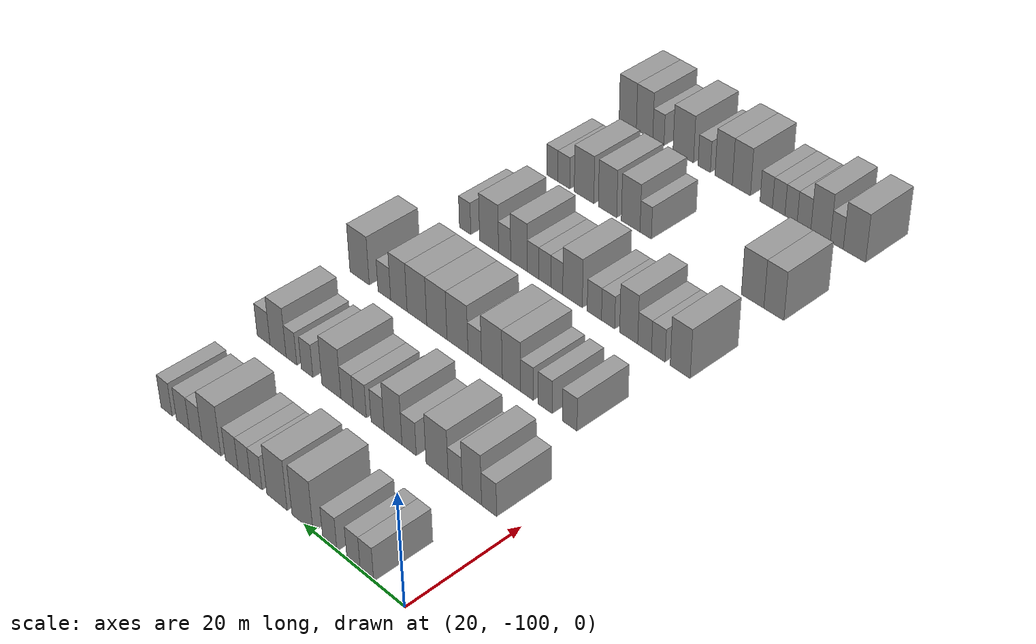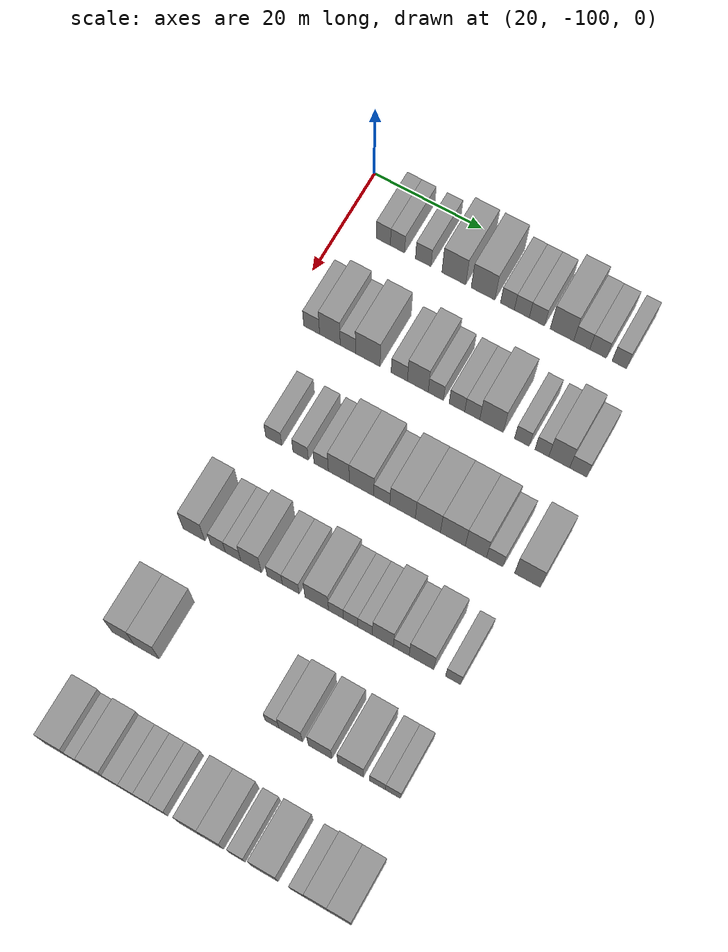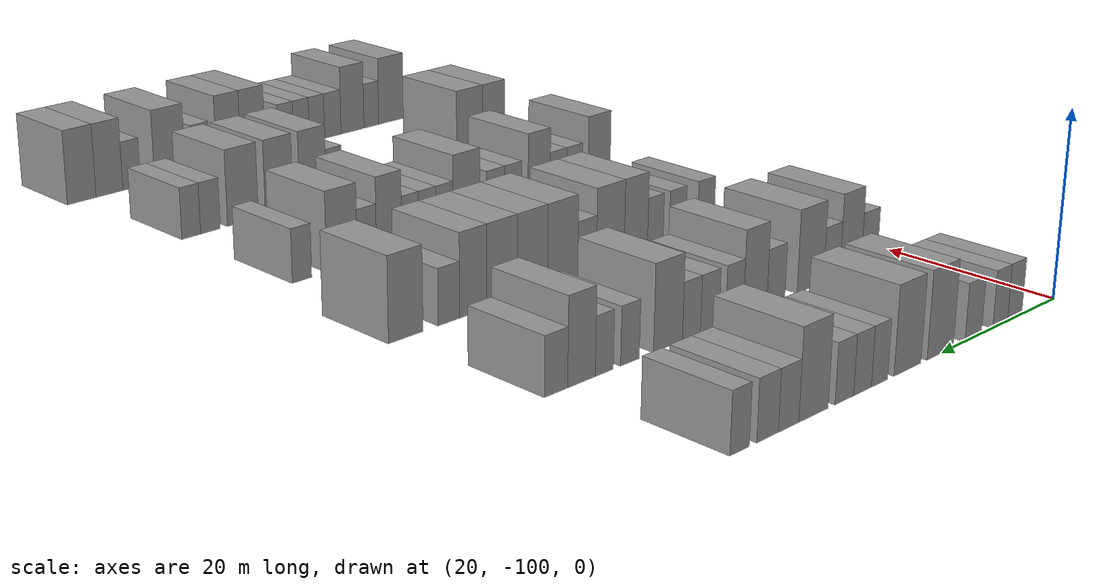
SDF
<sdf version="1.6">
 <world name="default">
  <model name="building_63">
   <static>1</static>
   <pose>25.0000 -92.7019 0 0.000000 0.000000 0.000000</pose>
   <link name="link">
    <pose>0 0 3.00 0 0 0</pose>
    <collision name="collision"><geometry><box><size>10.0000 2.6333 6.0000</size></box></geometry></collision>
    <visual name="visual">
     <cast_shadows>0</cast_shadows>
     <geometry><box><size>10.0000 2.6333 6.0000</size></box></geometry>
     <material>
      <script>
       <uri>model://grey_wall/materials/scripts</uri>
       <uri>model://grey_wall/materials/textures</uri>
       <name>vrc/grey_wall</name>
      </script>
     </material>
    </visual>
   </link>
  </model>
  <model name="building_64">
   <static>1</static>
   <pose>25.0000 -90.0661 0 0.000000 0.000000 0.000000</pose>
   <link name="link">
    <pose>0 0 3.00 0 0 0</pose>
    <collision name="collision"><geometry><box><size>10.0000 2.6383 6.0000</size></box></geometry></collision>
    <visual name="visual">
     <cast_shadows>0</cast_shadows>
     <geometry><box><size>10.0000 2.6383 6.0000</size></box></geometry>
     <material>
      <script>
       <uri>model://grey_wall/materials/scripts</uri>
       <uri>model://grey_wall/materials/textures</uri>
       <name>vrc/grey_wall</name>
      </script>
     </material>
    </visual>
   </link>
  </model>
  <model name="building_65">
   <static>1</static>
   <pose>25.0000 -85.3199 0 0.000000 0.000000 0.000000</pose>
   <link name="link">
    <pose>0 0 3.00 0 0 0</pose>
    <collision name="collision"><geometry><box><size>10.0000 2.8541 6.0000</size></box></geometry></collision>
    <visual name="visual">
     <cast_shadows>0</cast_shadows>
     <geometry><box><size>10.0000 2.8541 6.0000</size></box></geometry>
     <material>
      <script>
       <uri>model://grey_wall/materials/scripts</uri>
       <uri>model://grey_wall/materials/textures</uri>
       <name>vrc/grey_wall</name>
      </script>
     </material>
    </visual>
   </link>
  </model>
  <model name="building_66">
   <static>1</static>
   <pose>25.0000 -79.7140 0 0.000000 0.000000 0.000000</pose>
   <link name="link">
    <pose>0 0 4.50 0 0 0</pose>
    <collision name="collision"><geometry><box><size>10.0000 4.3578 9.0000</size></box></geometry></collision>
    <visual name="visual">
     <cast_shadows>0</cast_shadows>
     <geometry><box><size>10.0000 4.3578 9.0000</size></box></geometry>
     <material>
      <script>
       <uri>model://grey_wall/materials/scripts</uri>
       <uri>model://grey_wall/materials/textures</uri>
       <name>vrc/grey_wall</name>
      </script>
     </material>
    </visual>
   </link>
  </model>
  <model name="building_67">
   <static>1</static>
   <pose>25.0000 -74.3770 0 0.000000 0.000000 0.000000</pose>
   <link name="link">
    <pose>0 0 4.50 0 0 0</pose>
    <collision name="collision"><geometry><box><size>10.0000 4.3161 9.0000</size></box></geometry></collision>
    <visual name="visual">
     <cast_shadows>0</cast_shadows>
     <geometry><box><size>10.0000 4.3161 9.0000</size></box></geometry>
     <material>
      <script>
       <uri>model://grey_wall/materials/scripts</uri>
       <uri>model://grey_wall/materials/textures</uri>
       <name>vrc/grey_wall</name>
      </script>
     </material>
    </visual>
   </link>
  </model>
  <model name="building_68">
   <static>1</static>
   <pose>25.0000 -69.9639 0 0.000000 0.000000 0.000000</pose>
   <link name="link">
    <pose>0 0 3.00 0 0 0</pose>
    <collision name="collision"><geometry><box><size>10.0000 2.5100 6.0000</size></box></geometry></collision>
    <visual name="visual">
     <cast_shadows>0</cast_shadows>
     <geometry><box><size>10.0000 2.5100 6.0000</size></box></geometry>
     <material>
      <script>
       <uri>model://grey_wall/materials/scripts</uri>
       <uri>model://grey_wall/materials/textures</uri>
       <name>vrc/grey_wall</name>
      </script>
     </material>
    </visual>
   </link>
  </model>
  <model name="building_69">
   <static>1</static>
   <pose>25.0000 -67.3625 0 0.000000 0.000000 0.000000</pose>
   <link name="link">
    <pose>0 0 3.00 0 0 0</pose>
    <collision name="collision"><geometry><box><size>10.0000 2.6928 6.0000</size></box></geometry></collision>
    <visual name="visual">
     <cast_shadows>0</cast_shadows>
     <geometry><box><size>10.0000 2.6928 6.0000</size></box></geometry>
     <material>
      <script>
       <uri>model://grey_wall/materials/scripts</uri>
       <uri>model://grey_wall/materials/textures</uri>
       <name>vrc/grey_wall</name>
      </script>
     </material>
    </visual>
   </link>
  </model>
  <model name="building_70">
   <static>1</static>
   <pose>25.0000 -64.6298 0 0.000000 0.000000 0.000000</pose>
   <link name="link">
    <pose>0 0 3.00 0 0 0</pose>
    <collision name="collision"><geometry><box><size>10.0000 2.7727 6.0000</size></box></geometry></collision>
    <visual name="visual">
     <cast_shadows>0</cast_shadows>
     <geometry><box><size>10.0000 2.7727 6.0000</size></box></geometry>
     <material>
      <script>
       <uri>model://grey_wall/materials/scripts</uri>
       <uri>model://grey_wall/materials/textures</uri>
       <name>vrc/grey_wall</name>
      </script>
     </material>
    </visual>
   </link>
  </model>
  <model name="building_71">
   <static>1</static>
   <pose>25.0000 -60.1350 0 0.000000 0.000000 0.000000</pose>
   <link name="link">
    <pose>0 0 4.50 0 0 0</pose>
    <collision name="collision"><geometry><box><size>10.0000 4.2170 9.0000</size></box></geometry></collision>
    <visual name="visual">
     <cast_shadows>0</cast_shadows>
     <geometry><box><size>10.0000 4.2170 9.0000</size></box></geometry>
     <material>
      <script>
       <uri>model://grey_wall/materials/scripts</uri>
       <uri>model://grey_wall/materials/textures</uri>
       <name>vrc/grey_wall</name>
      </script>
     </material>
    </visual>
   </link>
  </model>
  <model name="building_72">
   <static>1</static>
   <pose>25.0000 -56.5960 0 0.000000 0.000000 0.000000</pose>
   <link name="link">
    <pose>0 0 3.00 0 0 0</pose>
    <collision name="collision"><geometry><box><size>10.0000 2.8609 6.0000</size></box></geometry></collision>
    <visual name="visual">
     <cast_shadows>0</cast_shadows>
     <geometry><box><size>10.0000 2.8609 6.0000</size></box></geometry>
     <material>
      <script>
       <uri>model://grey_wall/materials/scripts</uri>
       <uri>model://grey_wall/materials/textures</uri>
       <name>vrc/grey_wall</name>
      </script>
     </material>
    </visual>
   </link>
  </model>
  <model name="building_73">
   <static>1</static>
   <pose>25.0000 -53.6867 0 0.000000 0.000000 0.000000</pose>
   <link name="link">
    <pose>0 0 3.00 0 0 0</pose>
    <collision name="collision"><geometry><box><size>10.0000 2.9577 6.0000</size></box></geometry></collision>
    <visual name="visual">
     <cast_shadows>0</cast_shadows>
     <geometry><box><size>10.0000 2.9577 6.0000</size></box></geometry>
     <material>
      <script>
       <uri>model://grey_wall/materials/scripts</uri>
       <uri>model://grey_wall/materials/textures</uri>
       <name>vrc/grey_wall</name>
      </script>
     </material>
    </visual>
   </link>
  </model>
  <model name="building_74">
   <static>1</static>
   <pose>25.0000 -49.9229 0 0.000000 0.000000 0.000000</pose>
   <link name="link">
    <pose>0 0 3.00 0 0 0</pose>
    <collision name="collision"><geometry><box><size>10.0000 2.5699 6.0000</size></box></geometry></collision>
    <visual name="visual">
     <cast_shadows>0</cast_shadows>
     <geometry><box><size>10.0000 2.5699 6.0000</size></box></geometry>
     <material>
      <script>
       <uri>model://grey_wall/materials/scripts</uri>
       <uri>model://grey_wall/materials/textures</uri>
       <name>vrc/grey_wall</name>
      </script>
     </material>
    </visual>
   </link>
  </model>
  <model name="building_234">
   <static>1</static>
   <pose>44.0000 -94.9678 0 0.000000 0.000000 0.000000</pose>
   <link name="link">
    <pose>0 0 3.00 0 0 0</pose>
    <collision name="collision"><geometry><box><size>10.0000 2.9065 6.0000</size></box></geometry></collision>
    <visual name="visual">
     <cast_shadows>0</cast_shadows>
     <geometry><box><size>10.0000 2.9065 6.0000</size></box></geometry>
     <material>
      <script>
       <uri>model://grey_wall/materials/scripts</uri>
       <uri>model://grey_wall/materials/textures</uri>
       <name>vrc/grey_wall</name>
      </script>
     </material>
    </visual>
   </link>
  </model>
  <model name="building_235">
   <static>1</static>
   <pose>44.0000 -91.6244 0 0.000000 0.000000 0.000000</pose>
   <link name="link">
    <pose>0 0 4.50 0 0 0</pose>
    <collision name="collision"><geometry><box><size>10.0000 3.7804 9.0000</size></box></geometry></collision>
    <visual name="visual">
     <cast_shadows>0</cast_shadows>
     <geometry><box><size>10.0000 3.7804 9.0000</size></box></geometry>
     <material>
      <script>
       <uri>model://grey_wall/materials/scripts</uri>
       <uri>model://grey_wall/materials/textures</uri>
       <name>vrc/grey_wall</name>
      </script>
     </material>
    </visual>
   </link>
  </model>
  <model name="building_236">
   <static>1</static>
   <pose>44.0000 -88.3433 0 0.000000 0.000000 0.000000</pose>
   <link name="link">
    <pose>0 0 3.00 0 0 0</pose>
    <collision name="collision"><geometry><box><size>10.0000 2.7818 6.0000</size></box></geometry></collision>
    <visual name="visual">
     <cast_shadows>0</cast_shadows>
     <geometry><box><size>10.0000 2.7818 6.0000</size></box></geometry>
     <material>
      <script>
       <uri>model://grey_wall/materials/scripts</uri>
       <uri>model://grey_wall/materials/textures</uri>
       <name>vrc/grey_wall</name>
      </script>
     </material>
    </visual>
   </link>
  </model>
  <model name="building_237">
   <static>1</static>
   <pose>44.0000 -84.7190 0 0.000000 0.000000 0.000000</pose>
   <link name="link">
    <pose>0 0 4.50 0 0 0</pose>
    <collision name="collision"><geometry><box><size>10.0000 4.4667 9.0000</size></box></geometry></collision>
    <visual name="visual">
     <cast_shadows>0</cast_shadows>
     <geometry><box><size>10.0000 4.4667 9.0000</size></box></geometry>
     <material>
      <script>
       <uri>model://grey_wall/materials/scripts</uri>
       <uri>model://grey_wall/materials/textures</uri>
       <name>vrc/grey_wall</name>
      </script>
     </material>
    </visual>
   </link>
  </model>
  <model name="building_238">
   <static>1</static>
   <pose>44.0000 -79.0216 0 0.000000 0.000000 0.000000</pose>
   <link name="link">
    <pose>0 0 3.00 0 0 0</pose>
    <collision name="collision"><geometry><box><size>10.0000 2.9279 6.0000</size></box></geometry></collision>
    <visual name="visual">
     <cast_shadows>0</cast_shadows>
     <geometry><box><size>10.0000 2.9279 6.0000</size></box></geometry>
     <material>
      <script>
       <uri>model://grey_wall/materials/scripts</uri>
       <uri>model://grey_wall/materials/textures</uri>
       <name>vrc/grey_wall</name>
      </script>
     </material>
    </visual>
   </link>
  </model>
  <model name="building_239">
   <static>1</static>
   <pose>44.0000 -75.6880 0 0.000000 0.000000 0.000000</pose>
   <link name="link">
    <pose>0 0 4.50 0 0 0</pose>
    <collision name="collision"><geometry><box><size>10.0000 3.7394 9.0000</size></box></geometry></collision>
    <visual name="visual">
     <cast_shadows>0</cast_shadows>
     <geometry><box><size>10.0000 3.7394 9.0000</size></box></geometry>
     <material>
      <script>
       <uri>model://grey_wall/materials/scripts</uri>
       <uri>model://grey_wall/materials/textures</uri>
       <name>vrc/grey_wall</name>
      </script>
     </material>
    </visual>
   </link>
  </model>
  <model name="building_240">
   <static>1</static>
   <pose>44.0000 -72.4473 0 0.000000 0.000000 0.000000</pose>
   <link name="link">
    <pose>0 0 3.00 0 0 0</pose>
    <collision name="collision"><geometry><box><size>10.0000 2.7419 6.0000</size></box></geometry></collision>
    <visual name="visual">
     <cast_shadows>0</cast_shadows>
     <geometry><box><size>10.0000 2.7419 6.0000</size></box></geometry>
     <material>
      <script>
       <uri>model://grey_wall/materials/scripts</uri>
       <uri>model://grey_wall/materials/textures</uri>
       <name>vrc/grey_wall</name>
      </script>
     </material>
    </visual>
   </link>
  </model>
  <model name="building_241">
   <static>1</static>
   <pose>44.0000 -68.6821 0 0.000000 0.000000 0.000000</pose>
   <link name="link">
    <pose>0 0 3.00 0 0 0</pose>
    <collision name="collision"><geometry><box><size>10.0000 2.7885 6.0000</size></box></geometry></collision>
    <visual name="visual">
     <cast_shadows>0</cast_shadows>
     <geometry><box><size>10.0000 2.7885 6.0000</size></box></geometry>
     <material>
      <script>
       <uri>model://grey_wall/materials/scripts</uri>
       <uri>model://grey_wall/materials/textures</uri>
       <name>vrc/grey_wall</name>
      </script>
     </material>
    </visual>
   </link>
  </model>
  <model name="building_242">
   <static>1</static>
   <pose>44.0000 -65.9531 0 0.000000 0.000000 0.000000</pose>
   <link name="link">
    <pose>0 0 3.00 0 0 0</pose>
    <collision name="collision"><geometry><box><size>10.0000 2.6696 6.0000</size></box></geometry></collision>
    <visual name="visual">
     <cast_shadows>0</cast_shadows>
     <geometry><box><size>10.0000 2.6696 6.0000</size></box></geometry>
     <material>
      <script>
       <uri>model://grey_wall/materials/scripts</uri>
       <uri>model://grey_wall/materials/textures</uri>
       <name>vrc/grey_wall</name>
      </script>
     </material>
    </visual>
   </link>
  </model>
  <model name="building_243">
   <static>1</static>
   <pose>44.0000 -62.5324 0 0.000000 0.000000 0.000000</pose>
   <link name="link">
    <pose>0 0 4.50 0 0 0</pose>
    <collision name="collision"><geometry><box><size>10.0000 4.1717 9.0000</size></box></geometry></collision>
    <visual name="visual">
     <cast_shadows>0</cast_shadows>
     <geometry><box><size>10.0000 4.1717 9.0000</size></box></geometry>
     <material>
      <script>
       <uri>model://grey_wall/materials/scripts</uri>
       <uri>model://grey_wall/materials/textures</uri>
       <name>vrc/grey_wall</name>
      </script>
     </material>
    </visual>
   </link>
  </model>
  <model name="building_244">
   <static>1</static>
   <pose>44.0000 -57.1507 0 0.000000 0.000000 0.000000</pose>
   <link name="link">
    <pose>0 0 3.00 0 0 0</pose>
    <collision name="collision"><geometry><box><size>10.0000 2.5918 6.0000</size></box></geometry></collision>
    <visual name="visual">
     <cast_shadows>0</cast_shadows>
     <geometry><box><size>10.0000 2.5918 6.0000</size></box></geometry>
     <material>
      <script>
       <uri>model://grey_wall/materials/scripts</uri>
       <uri>model://grey_wall/materials/textures</uri>
       <name>vrc/grey_wall</name>
      </script>
     </material>
    </visual>
   </link>
  </model>
  <model name="building_245">
   <static>1</static>
   <pose>44.0000 -53.6444 0 0.000000 0.000000 0.000000</pose>
   <link name="link">
    <pose>0 0 3.00 0 0 0</pose>
    <collision name="collision"><geometry><box><size>10.0000 2.4206 6.0000</size></box></geometry></collision>
    <visual name="visual">
     <cast_shadows>0</cast_shadows>
     <geometry><box><size>10.0000 2.4206 6.0000</size></box></geometry>
     <material>
      <script>
       <uri>model://grey_wall/materials/scripts</uri>
       <uri>model://grey_wall/materials/textures</uri>
       <name>vrc/grey_wall</name>
      </script>
     </material>
    </visual>
   </link>
  </model>
  <model name="building_246">
   <static>1</static>
   <pose>44.0000 -50.5993 0 0.000000 0.000000 0.000000</pose>
   <link name="link">
    <pose>0 0 4.50 0 0 0</pose>
    <collision name="collision"><geometry><box><size>10.0000 3.6698 9.0000</size></box></geometry></collision>
    <visual name="visual">
     <cast_shadows>0</cast_shadows>
     <geometry><box><size>10.0000 3.6698 9.0000</size></box></geometry>
     <material>
      <script>
       <uri>model://grey_wall/materials/scripts</uri>
       <uri>model://grey_wall/materials/textures</uri>
       <name>vrc/grey_wall</name>
      </script>
     </material>
    </visual>
   </link>
  </model>
  <model name="building_247">
   <static>1</static>
   <pose>44.0000 -47.2707 0 0.000000 0.000000 0.000000</pose>
   <link name="link">
    <pose>0 0 3.00 0 0 0</pose>
    <collision name="collision"><geometry><box><size>10.0000 2.9873 6.0000</size></box></geometry></collision>
    <visual name="visual">
     <cast_shadows>0</cast_shadows>
     <geometry><box><size>10.0000 2.9873 6.0000</size></box></geometry>
     <material>
      <script>
       <uri>model://grey_wall/materials/scripts</uri>
       <uri>model://grey_wall/materials/textures</uri>
       <name>vrc/grey_wall</name>
      </script>
     </material>
    </visual>
   </link>
  </model>
  <model name="building_406">
   <static>1</static>
   <pose>63.0000 -90.6383 0 0.000000 0.000000 0.000000</pose>
   <link name="link">
    <pose>0 0 3.00 0 0 0</pose>
    <collision name="collision"><geometry><box><size>10.0000 2.8955 6.0000</size></box></geometry></collision>
    <visual name="visual">
     <cast_shadows>0</cast_shadows>
     <geometry><box><size>10.0000 2.8955 6.0000</size></box></geometry>
     <material>
      <script>
       <uri>model://grey_wall/materials/scripts</uri>
       <uri>model://grey_wall/materials/textures</uri>
       <name>vrc/grey_wall</name>
      </script>
     </material>
    </visual>
   </link>
  </model>
  <model name="building_407">
   <static>1</static>
   <pose>63.0000 -85.8061 0 0.000000 0.000000 0.000000</pose>
   <link name="link">
    <pose>0 0 3.00 0 0 0</pose>
    <collision name="collision"><geometry><box><size>10.0000 2.7689 6.0000</size></box></geometry></collision>
    <visual name="visual">
     <cast_shadows>0</cast_shadows>
     <geometry><box><size>10.0000 2.7689 6.0000</size></box></geometry>
     <material>
      <script>
       <uri>model://grey_wall/materials/scripts</uri>
       <uri>model://grey_wall/materials/textures</uri>
       <name>vrc/grey_wall</name>
      </script>
     </material>
    </visual>
   </link>
  </model>
  <model name="building_408">
   <static>1</static>
   <pose>63.0000 -82.1418 0 0.000000 0.000000 0.000000</pose>
   <link name="link">
    <pose>0 0 3.00 0 0 0</pose>
    <collision name="collision"><geometry><box><size>10.0000 2.5599 6.0000</size></box></geometry></collision>
    <visual name="visual">
     <cast_shadows>0</cast_shadows>
     <geometry><box><size>10.0000 2.5599 6.0000</size></box></geometry>
     <material>
      <script>
       <uri>model://grey_wall/materials/scripts</uri>
       <uri>model://grey_wall/materials/textures</uri>
       <name>vrc/grey_wall</name>
      </script>
     </material>
    </visual>
   </link>
  </model>
  <model name="building_409">
   <static>1</static>
   <pose>63.0000 -78.9904 0 0.000000 0.000000 0.000000</pose>
   <link name="link">
    <pose>0 0 4.50 0 0 0</pose>
    <collision name="collision"><geometry><box><size>10.0000 3.7428 9.0000</size></box></geometry></collision>
    <visual name="visual">
     <cast_shadows>0</cast_shadows>
     <geometry><box><size>10.0000 3.7428 9.0000</size></box></geometry>
     <material>
      <script>
       <uri>model://grey_wall/materials/scripts</uri>
       <uri>model://grey_wall/materials/textures</uri>
       <name>vrc/grey_wall</name>
      </script>
     </material>
    </visual>
   </link>
  </model>
  <model name="building_410">
   <static>1</static>
   <pose>63.0000 -74.9562 0 0.000000 0.000000 0.000000</pose>
   <link name="link">
    <pose>0 0 4.50 0 0 0</pose>
    <collision name="collision"><geometry><box><size>10.0000 4.3256 9.0000</size></box></geometry></collision>
    <visual name="visual">
     <cast_shadows>0</cast_shadows>
     <geometry><box><size>10.0000 4.3256 9.0000</size></box></geometry>
     <material>
      <script>
       <uri>model://grey_wall/materials/scripts</uri>
       <uri>model://grey_wall/materials/textures</uri>
       <name>vrc/grey_wall</name>
      </script>
     </material>
    </visual>
   </link>
  </model>
  <model name="building_411">
   <static>1</static>
   <pose>63.0000 -71.3717 0 0.000000 0.000000 0.000000</pose>
   <link name="link">
    <pose>0 0 3.00 0 0 0</pose>
    <collision name="collision"><geometry><box><size>10.0000 2.8434 6.0000</size></box></geometry></collision>
    <visual name="visual">
     <cast_shadows>0</cast_shadows>
     <geometry><box><size>10.0000 2.8434 6.0000</size></box></geometry>
     <material>
      <script>
       <uri>model://grey_wall/materials/scripts</uri>
       <uri>model://grey_wall/materials/textures</uri>
       <name>vrc/grey_wall</name>
      </script>
     </material>
    </visual>
   </link>
  </model>
  <model name="building_412">
   <static>1</static>
   <pose>63.0000 -67.7100 0 0.000000 0.000000 0.000000</pose>
   <link name="link">
    <pose>0 0 4.50 0 0 0</pose>
    <collision name="collision"><geometry><box><size>10.0000 4.4800 9.0000</size></box></geometry></collision>
    <visual name="visual">
     <cast_shadows>0</cast_shadows>
     <geometry><box><size>10.0000 4.4800 9.0000</size></box></geometry>
     <material>
      <script>
       <uri>model://grey_wall/materials/scripts</uri>
       <uri>model://grey_wall/materials/textures</uri>
       <name>vrc/grey_wall</name>
      </script>
     </material>
    </visual>
   </link>
  </model>
  <model name="building_413">
   <static>1</static>
   <pose>63.0000 -63.2791 0 0.000000 0.000000 0.000000</pose>
   <link name="link">
    <pose>0 0 4.50 0 0 0</pose>
    <collision name="collision"><geometry><box><size>10.0000 4.3820 9.0000</size></box></geometry></collision>
    <visual name="visual">
     <cast_shadows>0</cast_shadows>
     <geometry><box><size>10.0000 4.3820 9.0000</size></box></geometry>
     <material>
      <script>
       <uri>model://grey_wall/materials/scripts</uri>
       <uri>model://grey_wall/materials/textures</uri>
       <name>vrc/grey_wall</name>
      </script>
     </material>
    </visual>
   </link>
  </model>
  <model name="building_414">
   <static>1</static>
   <pose>63.0000 -58.9188 0 0.000000 0.000000 0.000000</pose>
   <link name="link">
    <pose>0 0 4.50 0 0 0</pose>
    <collision name="collision"><geometry><box><size>10.0000 4.3386 9.0000</size></box></geometry></collision>
    <visual name="visual">
     <cast_shadows>0</cast_shadows>
     <geometry><box><size>10.0000 4.3386 9.0000</size></box></geometry>
     <material>
      <script>
       <uri>model://grey_wall/materials/scripts</uri>
       <uri>model://grey_wall/materials/textures</uri>
       <name>vrc/grey_wall</name>
      </script>
     </material>
    </visual>
   </link>
  </model>
  <model name="building_415">
   <static>1</static>
   <pose>63.0000 -54.9156 0 0.000000 0.000000 0.000000</pose>
   <link name="link">
    <pose>0 0 4.50 0 0 0</pose>
    <collision name="collision"><geometry><box><size>10.0000 3.6679 9.0000</size></box></geometry></collision>
    <visual name="visual">
     <cast_shadows>0</cast_shadows>
     <geometry><box><size>10.0000 3.6679 9.0000</size></box></geometry>
     <material>
      <script>
       <uri>model://grey_wall/materials/scripts</uri>
       <uri>model://grey_wall/materials/textures</uri>
       <name>vrc/grey_wall</name>
      </script>
     </material>
    </visual>
   </link>
  </model>
  <model name="building_416">
   <static>1</static>
   <pose>63.0000 -51.6492 0 0.000000 0.000000 0.000000</pose>
   <link name="link">
    <pose>0 0 3.00 0 0 0</pose>
    <collision name="collision"><geometry><box><size>10.0000 2.8648 6.0000</size></box></geometry></collision>
    <visual name="visual">
     <cast_shadows>0</cast_shadows>
     <geometry><box><size>10.0000 2.8648 6.0000</size></box></geometry>
     <material>
      <script>
       <uri>model://grey_wall/materials/scripts</uri>
       <uri>model://grey_wall/materials/textures</uri>
       <name>vrc/grey_wall</name>
      </script>
     </material>
    </visual>
   </link>
  </model>
  <model name="building_417">
   <static>1</static>
   <pose>63.0000 -45.9979 0 0.000000 0.000000 0.000000</pose>
   <link name="link">
    <pose>0 0 4.50 0 0 0</pose>
    <collision name="collision"><geometry><box><size>10.0000 4.4377 9.0000</size></box></geometry></collision>
    <visual name="visual">
     <cast_shadows>0</cast_shadows>
     <geometry><box><size>10.0000 4.4377 9.0000</size></box></geometry>
     <material>
      <script>
       <uri>model://grey_wall/materials/scripts</uri>
       <uri>model://grey_wall/materials/textures</uri>
       <name>vrc/grey_wall</name>
      </script>
     </material>
    </visual>
   </link>
  </model>
  <model name="building_584">
   <static>1</static>
   <pose>82.0000 -93.4964 0 0.000000 0.000000 0.000000</pose>
   <link name="link">
    <pose>0 0 4.50 0 0 0</pose>
    <collision name="collision"><geometry><box><size>10.0000 3.8624 9.0000</size></box></geometry></collision>
    <visual name="visual">
     <cast_shadows>0</cast_shadows>
     <geometry><box><size>10.0000 3.8624 9.0000</size></box></geometry>
     <material>
      <script>
       <uri>model://grey_wall/materials/scripts</uri>
       <uri>model://grey_wall/materials/textures</uri>
       <name>vrc/grey_wall</name>
      </script>
     </material>
    </visual>
   </link>
  </model>
  <model name="building_585">
   <static>1</static>
   <pose>82.0000 -89.2235 0 0.000000 0.000000 0.000000</pose>
   <link name="link">
    <pose>0 0 3.00 0 0 0</pose>
    <collision name="collision"><geometry><box><size>10.0000 2.6835 6.0000</size></box></geometry></collision>
    <visual name="visual">
     <cast_shadows>0</cast_shadows>
     <geometry><box><size>10.0000 2.6835 6.0000</size></box></geometry>
     <material>
      <script>
       <uri>model://grey_wall/materials/scripts</uri>
       <uri>model://grey_wall/materials/textures</uri>
       <name>vrc/grey_wall</name>
      </script>
     </material>
    </visual>
   </link>
  </model>
  <model name="building_586">
   <static>1</static>
   <pose>82.0000 -86.5142 0 0.000000 0.000000 0.000000</pose>
   <link name="link">
    <pose>0 0 3.00 0 0 0</pose>
    <collision name="collision"><geometry><box><size>10.0000 2.7349 6.0000</size></box></geometry></collision>
    <visual name="visual">
     <cast_shadows>0</cast_shadows>
     <geometry><box><size>10.0000 2.7349 6.0000</size></box></geometry>
     <material>
      <script>
       <uri>model://grey_wall/materials/scripts</uri>
       <uri>model://grey_wall/materials/textures</uri>
       <name>vrc/grey_wall</name>
      </script>
     </material>
    </visual>
   </link>
  </model>
  <model name="building_587">
   <static>1</static>
   <pose>82.0000 -83.3303 0 0.000000 0.000000 0.000000</pose>
   <link name="link">
    <pose>0 0 4.50 0 0 0</pose>
    <collision name="collision"><geometry><box><size>10.0000 3.6330 9.0000</size></box></geometry></collision>
    <visual name="visual">
     <cast_shadows>0</cast_shadows>
     <geometry><box><size>10.0000 3.6330 9.0000</size></box></geometry>
     <material>
      <script>
       <uri>model://grey_wall/materials/scripts</uri>
       <uri>model://grey_wall/materials/textures</uri>
       <name>vrc/grey_wall</name>
      </script>
     </material>
    </visual>
   </link>
  </model>
  <model name="building_588">
   <static>1</static>
   <pose>82.0000 -79.1652 0 0.000000 0.000000 0.000000</pose>
   <link name="link">
    <pose>0 0 3.00 0 0 0</pose>
    <collision name="collision"><geometry><box><size>10.0000 2.6972 6.0000</size></box></geometry></collision>
    <visual name="visual">
     <cast_shadows>0</cast_shadows>
     <geometry><box><size>10.0000 2.6972 6.0000</size></box></geometry>
     <material>
      <script>
       <uri>model://grey_wall/materials/scripts</uri>
       <uri>model://grey_wall/materials/textures</uri>
       <name>vrc/grey_wall</name>
      </script>
     </material>
    </visual>
   </link>
  </model>
  <model name="building_589">
   <static>1</static>
   <pose>82.0000 -76.3458 0 0.000000 0.000000 0.000000</pose>
   <link name="link">
    <pose>0 0 3.00 0 0 0</pose>
    <collision name="collision"><geometry><box><size>10.0000 2.9415 6.0000</size></box></geometry></collision>
    <visual name="visual">
     <cast_shadows>0</cast_shadows>
     <geometry><box><size>10.0000 2.9415 6.0000</size></box></geometry>
     <material>
      <script>
       <uri>model://grey_wall/materials/scripts</uri>
       <uri>model://grey_wall/materials/textures</uri>
       <name>vrc/grey_wall</name>
      </script>
     </material>
    </visual>
   </link>
  </model>
  <model name="building_590">
   <static>1</static>
   <pose>82.0000 -71.8231 0 0.000000 0.000000 0.000000</pose>
   <link name="link">
    <pose>0 0 4.50 0 0 0</pose>
    <collision name="collision"><geometry><box><size>10.0000 4.1041 9.0000</size></box></geometry></collision>
    <visual name="visual">
     <cast_shadows>0</cast_shadows>
     <geometry><box><size>10.0000 4.1041 9.0000</size></box></geometry>
     <material>
      <script>
       <uri>model://grey_wall/materials/scripts</uri>
       <uri>model://grey_wall/materials/textures</uri>
       <name>vrc/grey_wall</name>
      </script>
     </material>
    </visual>
   </link>
  </model>
  <model name="building_591">
   <static>1</static>
   <pose>82.0000 -68.4899 0 0.000000 0.000000 0.000000</pose>
   <link name="link">
    <pose>0 0 3.00 0 0 0</pose>
    <collision name="collision"><geometry><box><size>10.0000 2.5623 6.0000</size></box></geometry></collision>
    <visual name="visual">
     <cast_shadows>0</cast_shadows>
     <geometry><box><size>10.0000 2.5623 6.0000</size></box></geometry>
     <material>
      <script>
       <uri>model://grey_wall/materials/scripts</uri>
       <uri>model://grey_wall/materials/textures</uri>
       <name>vrc/grey_wall</name>
      </script>
     </material>
    </visual>
   </link>
  </model>
  <model name="building_592">
   <static>1</static>
   <pose>82.0000 -65.9437 0 0.000000 0.000000 0.000000</pose>
   <link name="link">
    <pose>0 0 3.00 0 0 0</pose>
    <collision name="collision"><geometry><box><size>10.0000 2.5301 6.0000</size></box></geometry></collision>
    <visual name="visual">
     <cast_shadows>0</cast_shadows>
     <geometry><box><size>10.0000 2.5301 6.0000</size></box></geometry>
     <material>
      <script>
       <uri>model://grey_wall/materials/scripts</uri>
       <uri>model://grey_wall/materials/textures</uri>
       <name>vrc/grey_wall</name>
      </script>
     </material>
    </visual>
   </link>
  </model>
  <model name="building_593">
   <static>1</static>
   <pose>82.0000 -63.4325 0 0.000000 0.000000 0.000000</pose>
   <link name="link">
    <pose>0 0 3.00 0 0 0</pose>
    <collision name="collision"><geometry><box><size>10.0000 2.4923 6.0000</size></box></geometry></collision>
    <visual name="visual">
     <cast_shadows>0</cast_shadows>
     <geometry><box><size>10.0000 2.4923 6.0000</size></box></geometry>
     <material>
      <script>
       <uri>model://grey_wall/materials/scripts</uri>
       <uri>model://grey_wall/materials/textures</uri>
       <name>vrc/grey_wall</name>
      </script>
     </material>
    </visual>
   </link>
  </model>
  <model name="building_594">
   <static>1</static>
   <pose>82.0000 -60.3789 0 0.000000 0.000000 0.000000</pose>
   <link name="link">
    <pose>0 0 4.50 0 0 0</pose>
    <collision name="collision"><geometry><box><size>10.0000 3.6150 9.0000</size></box></geometry></collision>
    <visual name="visual">
     <cast_shadows>0</cast_shadows>
     <geometry><box><size>10.0000 3.6150 9.0000</size></box></geometry>
     <material>
      <script>
       <uri>model://grey_wall/materials/scripts</uri>
       <uri>model://grey_wall/materials/textures</uri>
       <name>vrc/grey_wall</name>
      </script>
     </material>
    </visual>
   </link>
  </model>
  <model name="building_595">
   <static>1</static>
   <pose>82.0000 -57.2275 0 0.000000 0.000000 0.000000</pose>
   <link name="link">
    <pose>0 0 3.00 0 0 0</pose>
    <collision name="collision"><geometry><box><size>10.0000 2.6879 6.0000</size></box></geometry></collision>
    <visual name="visual">
     <cast_shadows>0</cast_shadows>
     <geometry><box><size>10.0000 2.6879 6.0000</size></box></geometry>
     <material>
      <script>
       <uri>model://grey_wall/materials/scripts</uri>
       <uri>model://grey_wall/materials/textures</uri>
       <name>vrc/grey_wall</name>
      </script>
     </material>
    </visual>
   </link>
  </model>
  <model name="building_596">
   <static>1</static>
   <pose>82.0000 -53.7746 0 0.000000 0.000000 0.000000</pose>
   <link name="link">
    <pose>0 0 4.50 0 0 0</pose>
    <collision name="collision"><geometry><box><size>10.0000 4.2178 9.0000</size></box></geometry></collision>
    <visual name="visual">
     <cast_shadows>0</cast_shadows>
     <geometry><box><size>10.0000 4.2178 9.0000</size></box></geometry>
     <material>
      <script>
       <uri>model://grey_wall/materials/scripts</uri>
       <uri>model://grey_wall/materials/textures</uri>
       <name>vrc/grey_wall</name>
      </script>
     </material>
    </visual>
   </link>
  </model>
  <model name="building_597">
   <static>1</static>
   <pose>82.0000 -48.3834 0 0.000000 0.000000 0.000000</pose>
   <link name="link">
    <pose>0 0 3.00 0 0 0</pose>
    <collision name="collision"><geometry><box><size>10.0000 2.5645 6.0000</size></box></geometry></collision>
    <visual name="visual">
     <cast_shadows>0</cast_shadows>
     <geometry><box><size>10.0000 2.5645 6.0000</size></box></geometry>
     <material>
      <script>
       <uri>model://grey_wall/materials/scripts</uri>
       <uri>model://grey_wall/materials/textures</uri>
       <name>vrc/grey_wall</name>
      </script>
     </material>
    </visual>
   </link>
  </model>
  <model name="building_761">
   <static>1</static>
   <pose>101.0000 -94.2984 0 0.000000 0.000000 0.000000</pose>
   <link name="link">
    <pose>0 0 4.50 0 0 0</pose>
    <collision name="collision"><geometry><box><size>10.0000 3.8793 9.0000</size></box></geometry></collision>
    <visual name="visual">
     <cast_shadows>0</cast_shadows>
     <geometry><box><size>10.0000 3.8793 9.0000</size></box></geometry>
     <material>
      <script>
       <uri>model://grey_wall/materials/scripts</uri>
       <uri>model://grey_wall/materials/textures</uri>
       <name>vrc/grey_wall</name>
      </script>
     </material>
    </visual>
   </link>
  </model>
  <model name="building_762">
   <static>1</static>
   <pose>101.0000 -90.1488 0 0.000000 0.000000 0.000000</pose>
   <link name="link">
    <pose>0 0 4.50 0 0 0</pose>
    <collision name="collision"><geometry><box><size>10.0000 4.4200 9.0000</size></box></geometry></collision>
    <visual name="visual">
     <cast_shadows>0</cast_shadows>
     <geometry><box><size>10.0000 4.4200 9.0000</size></box></geometry>
     <material>
      <script>
       <uri>model://grey_wall/materials/scripts</uri>
       <uri>model://grey_wall/materials/textures</uri>
       <name>vrc/grey_wall</name>
      </script>
     </material>
    </visual>
   </link>
  </model>
  <model name="building_763">
   <static>1</static>
   <pose>101.0000 -68.3354 0 0.000000 0.000000 0.000000</pose>
   <link name="link">
    <pose>0 0 3.00 0 0 0</pose>
    <collision name="collision"><geometry><box><size>10.0000 2.4023 6.0000</size></box></geometry></collision>
    <visual name="visual">
     <cast_shadows>0</cast_shadows>
     <geometry><box><size>10.0000 2.4023 6.0000</size></box></geometry>
     <material>
      <script>
       <uri>model://grey_wall/materials/scripts</uri>
       <uri>model://grey_wall/materials/textures</uri>
       <name>vrc/grey_wall</name>
      </script>
     </material>
    </visual>
   </link>
  </model>
  <model name="building_764">
   <static>1</static>
   <pose>101.0000 -65.1371 0 0.000000 0.000000 0.000000</pose>
   <link name="link">
    <pose>0 0 4.50 0 0 0</pose>
    <collision name="collision"><geometry><box><size>10.0000 3.9944 9.0000</size></box></geometry></collision>
    <visual name="visual">
     <cast_shadows>0</cast_shadows>
     <geometry><box><size>10.0000 3.9944 9.0000</size></box></geometry>
     <material>
      <script>
       <uri>model://grey_wall/materials/scripts</uri>
       <uri>model://grey_wall/materials/textures</uri>
       <name>vrc/grey_wall</name>
      </script>
     </material>
    </visual>
   </link>
  </model>
  <model name="building_765">
   <static>1</static>
   <pose>101.0000 -60.1486 0 0.000000 0.000000 0.000000</pose>
   <link name="link">
    <pose>0 0 4.50 0 0 0</pose>
    <collision name="collision"><geometry><box><size>10.0000 3.9825 9.0000</size></box></geometry></collision>
    <visual name="visual">
     <cast_shadows>0</cast_shadows>
     <geometry><box><size>10.0000 3.9825 9.0000</size></box></geometry>
     <material>
      <script>
       <uri>model://grey_wall/materials/scripts</uri>
       <uri>model://grey_wall/materials/textures</uri>
       <name>vrc/grey_wall</name>
      </script>
     </material>
    </visual>
   </link>
  </model>
  <model name="building_766">
   <static>1</static>
   <pose>101.0000 -54.9922 0 0.000000 0.000000 0.000000</pose>
   <link name="link">
    <pose>0 0 4.50 0 0 0</pose>
    <collision name="collision"><geometry><box><size>10.0000 4.3304 9.0000</size></box></geometry></collision>
    <visual name="visual">
     <cast_shadows>0</cast_shadows>
     <geometry><box><size>10.0000 4.3304 9.0000</size></box></geometry>
     <material>
      <script>
       <uri>model://grey_wall/materials/scripts</uri>
       <uri>model://grey_wall/materials/textures</uri>
       <name>vrc/grey_wall</name>
      </script>
     </material>
    </visual>
   </link>
  </model>
  <model name="building_767">
   <static>1</static>
   <pose>101.0000 -50.4891 0 0.000000 0.000000 0.000000</pose>
   <link name="link">
    <pose>0 0 3.00 0 0 0</pose>
    <collision name="collision"><geometry><box><size>10.0000 2.6758 6.0000</size></box></geometry></collision>
    <visual name="visual">
     <cast_shadows>0</cast_shadows>
     <geometry><box><size>10.0000 2.6758 6.0000</size></box></geometry>
     <material>
      <script>
       <uri>model://grey_wall/materials/scripts</uri>
       <uri>model://grey_wall/materials/textures</uri>
       <name>vrc/grey_wall</name>
      </script>
     </material>
    </visual>
   </link>
  </model>
  <model name="building_768">
   <static>1</static>
   <pose>101.0000 -47.8897 0 0.000000 0.000000 0.000000</pose>
   <link name="link">
    <pose>0 0 3.00 0 0 0</pose>
    <collision name="collision"><geometry><box><size>10.0000 2.5231 6.0000</size></box></geometry></collision>
    <visual name="visual">
     <cast_shadows>0</cast_shadows>
     <geometry><box><size>10.0000 2.5231 6.0000</size></box></geometry>
     <material>
      <script>
       <uri>model://grey_wall/materials/scripts</uri>
       <uri>model://grey_wall/materials/textures</uri>
       <name>vrc/grey_wall</name>
      </script>
     </material>
    </visual>
   </link>
  </model>
  <model name="building_928">
   <static>1</static>
   <pose>120.0000 -93.6471 0 0.000000 0.000000 0.000000</pose>
   <link name="link">
    <pose>0 0 4.50 0 0 0</pose>
    <collision name="collision"><geometry><box><size>10.0000 4.3684 9.0000</size></box></geometry></collision>
    <visual name="visual">
     <cast_shadows>0</cast_shadows>
     <geometry><box><size>10.0000 4.3684 9.0000</size></box></geometry>
     <material>
      <script>
       <uri>model://grey_wall/materials/scripts</uri>
       <uri>model://grey_wall/materials/textures</uri>
       <name>vrc/grey_wall</name>
      </script>
     </material>
    </visual>
   </link>
  </model>
  <model name="building_929">
   <static>1</static>
   <pose>120.0000 -90.1959 0 0.000000 0.000000 0.000000</pose>
   <link name="link">
    <pose>0 0 3.00 0 0 0</pose>
    <collision name="collision"><geometry><box><size>10.0000 2.5342 6.0000</size></box></geometry></collision>
    <visual name="visual">
     <cast_shadows>0</cast_shadows>
     <geometry><box><size>10.0000 2.5342 6.0000</size></box></geometry>
     <material>
      <script>
       <uri>model://grey_wall/materials/scripts</uri>
       <uri>model://grey_wall/materials/textures</uri>
       <name>vrc/grey_wall</name>
      </script>
     </material>
    </visual>
   </link>
  </model>
  <model name="building_930">
   <static>1</static>
   <pose>120.0000 -86.9793 0 0.000000 0.000000 0.000000</pose>
   <link name="link">
    <pose>0 0 4.50 0 0 0</pose>
    <collision name="collision"><geometry><box><size>10.0000 3.8990 9.0000</size></box></geometry></collision>
    <visual name="visual">
     <cast_shadows>0</cast_shadows>
     <geometry><box><size>10.0000 3.8990 9.0000</size></box></geometry>
     <material>
      <script>
       <uri>model://grey_wall/materials/scripts</uri>
       <uri>model://grey_wall/materials/textures</uri>
       <name>vrc/grey_wall</name>
      </script>
     </material>
    </visual>
   </link>
  </model>
  <model name="building_931">
   <static>1</static>
   <pose>120.0000 -83.6548 0 0.000000 0.000000 0.000000</pose>
   <link name="link">
    <pose>0 0 3.00 0 0 0</pose>
    <collision name="collision"><geometry><box><size>10.0000 2.7500 6.0000</size></box></geometry></collision>
    <visual name="visual">
     <cast_shadows>0</cast_shadows>
     <geometry><box><size>10.0000 2.7500 6.0000</size></box></geometry>
     <material>
      <script>
       <uri>model://grey_wall/materials/scripts</uri>
       <uri>model://grey_wall/materials/textures</uri>
       <name>vrc/grey_wall</name>
      </script>
     </material>
    </visual>
   </link>
  </model>
  <model name="building_932">
   <static>1</static>
   <pose>120.0000 -81.0326 0 0.000000 0.000000 0.000000</pose>
   <link name="link">
    <pose>0 0 3.00 0 0 0</pose>
    <collision name="collision"><geometry><box><size>10.0000 2.4945 6.0000</size></box></geometry></collision>
    <visual name="visual">
     <cast_shadows>0</cast_shadows>
     <geometry><box><size>10.0000 2.4945 6.0000</size></box></geometry>
     <material>
      <script>
       <uri>model://grey_wall/materials/scripts</uri>
       <uri>model://grey_wall/materials/textures</uri>
       <name>vrc/grey_wall</name>
      </script>
     </material>
    </visual>
   </link>
  </model>
  <model name="building_933">
   <static>1</static>
   <pose>120.0000 -78.5040 0 0.000000 0.000000 0.000000</pose>
   <link name="link">
    <pose>0 0 3.00 0 0 0</pose>
    <collision name="collision"><geometry><box><size>10.0000 2.5626 6.0000</size></box></geometry></collision>
    <visual name="visual">
     <cast_shadows>0</cast_shadows>
     <geometry><box><size>10.0000 2.5626 6.0000</size></box></geometry>
     <material>
      <script>
       <uri>model://grey_wall/materials/scripts</uri>
       <uri>model://grey_wall/materials/textures</uri>
       <name>vrc/grey_wall</name>
      </script>
     </material>
    </visual>
   </link>
  </model>
  <model name="building_934">
   <static>1</static>
   <pose>120.0000 -75.9491 0 0.000000 0.000000 0.000000</pose>
   <link name="link">
    <pose>0 0 3.00 0 0 0</pose>
    <collision name="collision"><geometry><box><size>10.0000 2.5472 6.0000</size></box></geometry></collision>
    <visual name="visual">
     <cast_shadows>0</cast_shadows>
     <geometry><box><size>10.0000 2.5472 6.0000</size></box></geometry>
     <material>
      <script>
       <uri>model://grey_wall/materials/scripts</uri>
       <uri>model://grey_wall/materials/textures</uri>
       <name>vrc/grey_wall</name>
      </script>
     </material>
    </visual>
   </link>
  </model>
  <model name="building_935">
   <static>1</static>
   <pose>120.0000 -70.7709 0 0.000000 0.000000 0.000000</pose>
   <link name="link">
    <pose>0 0 4.50 0 0 0</pose>
    <collision name="collision"><geometry><box><size>10.0000 3.8092 9.0000</size></box></geometry></collision>
    <visual name="visual">
     <cast_shadows>0</cast_shadows>
     <geometry><box><size>10.0000 3.8092 9.0000</size></box></geometry>
     <material>
      <script>
       <uri>model://grey_wall/materials/scripts</uri>
       <uri>model://grey_wall/materials/textures</uri>
       <name>vrc/grey_wall</name>
      </script>
     </material>
    </visual>
   </link>
  </model>
  <model name="building_936">
   <static>1</static>
   <pose>120.0000 -67.0226 0 0.000000 0.000000 0.000000</pose>
   <link name="link">
    <pose>0 0 4.50 0 0 0</pose>
    <collision name="collision"><geometry><box><size>10.0000 3.6875 9.0000</size></box></geometry></collision>
    <visual name="visual">
     <cast_shadows>0</cast_shadows>
     <geometry><box><size>10.0000 3.6875 9.0000</size></box></geometry>
     <material>
      <script>
       <uri>model://grey_wall/materials/scripts</uri>
       <uri>model://grey_wall/materials/textures</uri>
       <name>vrc/grey_wall</name>
      </script>
     </material>
    </visual>
   </link>
  </model>
  <model name="building_937">
   <static>1</static>
   <pose>120.0000 -62.8539 0 0.000000 0.000000 0.000000</pose>
   <link name="link">
    <pose>0 0 3.00 0 0 0</pose>
    <collision name="collision"><geometry><box><size>10.0000 2.6499 6.0000</size></box></geometry></collision>
    <visual name="visual">
     <cast_shadows>0</cast_shadows>
     <geometry><box><size>10.0000 2.6499 6.0000</size></box></geometry>
     <material>
      <script>
       <uri>model://grey_wall/materials/scripts</uri>
       <uri>model://grey_wall/materials/textures</uri>
       <name>vrc/grey_wall</name>
      </script>
     </material>
    </visual>
   </link>
  </model>
  <model name="building_938">
   <static>1</static>
   <pose>120.0000 -58.2825 0 0.000000 0.000000 0.000000</pose>
   <link name="link">
    <pose>0 0 4.50 0 0 0</pose>
    <collision name="collision"><geometry><box><size>10.0000 4.4929 9.0000</size></box></geometry></collision>
    <visual name="visual">
     <cast_shadows>0</cast_shadows>
     <geometry><box><size>10.0000 4.4929 9.0000</size></box></geometry>
     <material>
      <script>
       <uri>model://grey_wall/materials/scripts</uri>
       <uri>model://grey_wall/materials/textures</uri>
       <name>vrc/grey_wall</name>
      </script>
     </material>
    </visual>
   </link>
  </model>
  <model name="building_939">
   <static>1</static>
   <pose>120.0000 -52.7861 0 0.000000 0.000000 0.000000</pose>
   <link name="link">
    <pose>0 0 3.00 0 0 0</pose>
    <collision name="collision"><geometry><box><size>10.0000 2.5000 6.0000</size></box></geometry></collision>
    <visual name="visual">
     <cast_shadows>0</cast_shadows>
     <geometry><box><size>10.0000 2.5000 6.0000</size></box></geometry>
     <material>
      <script>
       <uri>model://grey_wall/materials/scripts</uri>
       <uri>model://grey_wall/materials/textures</uri>
       <name>vrc/grey_wall</name>
      </script>
     </material>
    </visual>
   </link>
  </model>
  <model name="building_940">
   <static>1</static>
   <pose>120.0000 -49.6807 0 0.000000 0.000000 0.000000</pose>
   <link name="link">
    <pose>0 0 4.50 0 0 0</pose>
    <collision name="collision"><geometry><box><size>10.0000 3.7106 9.0000</size></box></geometry></collision>
    <visual name="visual">
     <cast_shadows>0</cast_shadows>
     <geometry><box><size>10.0000 3.7106 9.0000</size></box></geometry>
     <material>
      <script>
       <uri>model://grey_wall/materials/scripts</uri>
       <uri>model://grey_wall/materials/textures</uri>
       <name>vrc/grey_wall</name>
      </script>
     </material>
    </visual>
   </link>
  </model>
  <model name="building_941">
   <static>1</static>
   <pose>120.0000 -45.8770 0 0.000000 0.000000 0.000000</pose>
   <link name="link">
    <pose>0 0 4.50 0 0 0</pose>
    <collision name="collision"><geometry><box><size>10.0000 3.8968 9.0000</size></box></geometry></collision>
    <visual name="visual">
     <cast_shadows>0</cast_shadows>
     <geometry><box><size>10.0000 3.8968 9.0000</size></box></geometry>
     <material>
      <script>
       <uri>model://grey_wall/materials/scripts</uri>
       <uri>model://grey_wall/materials/textures</uri>
       <name>vrc/grey_wall</name>
      </script>
     </material>
    </visual>
   </link>
  </model>
 </world>
</sdf>
